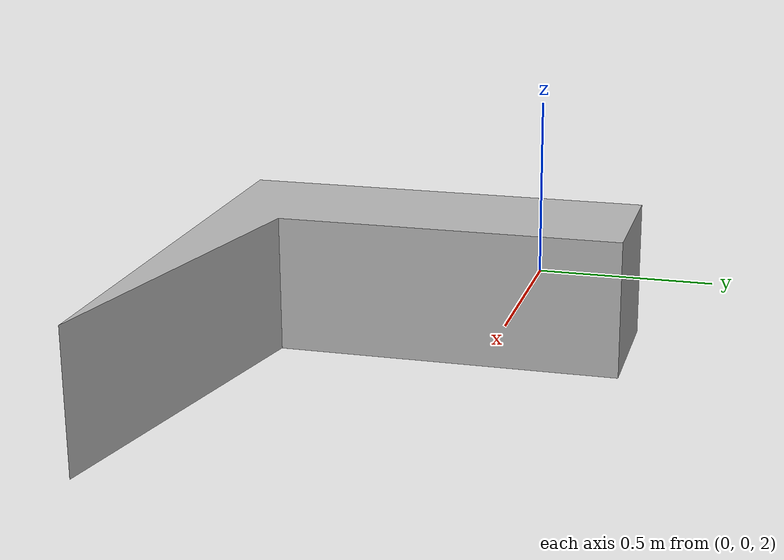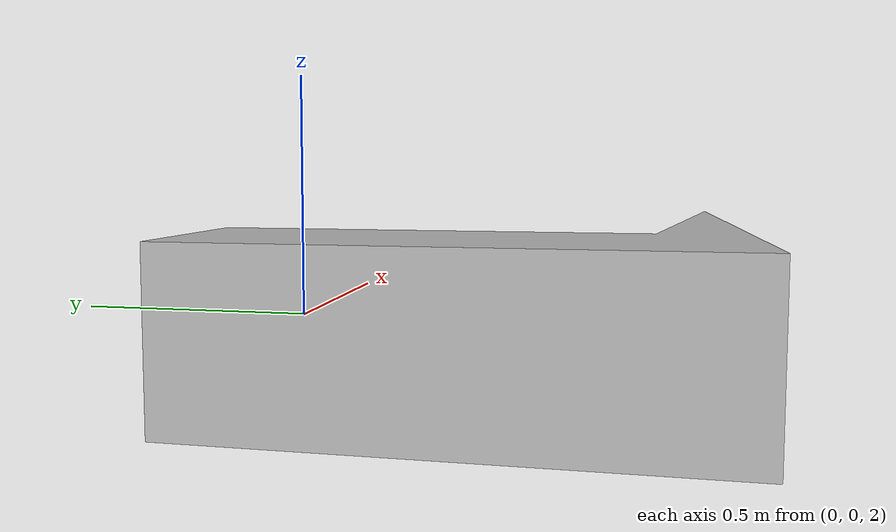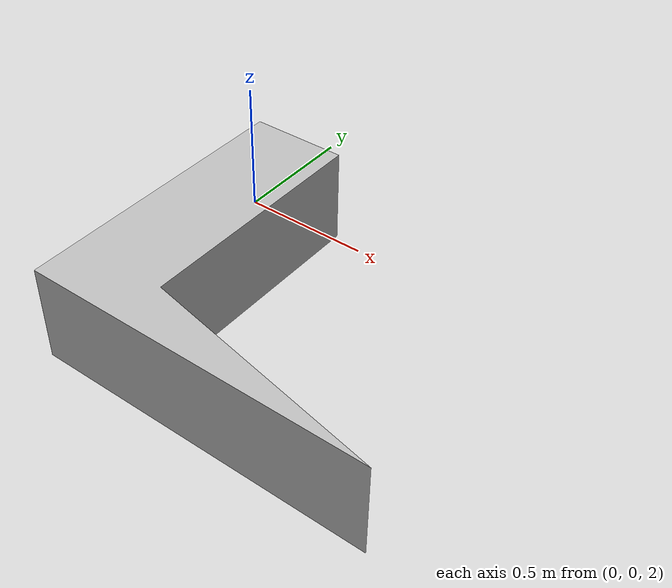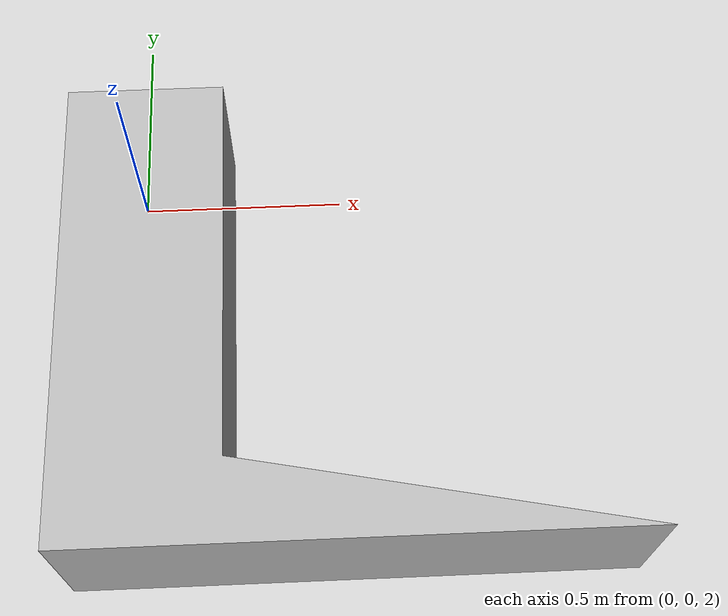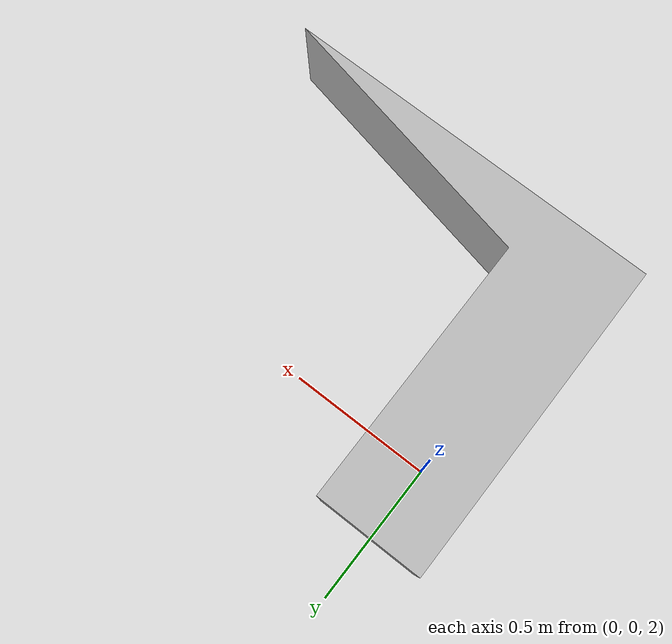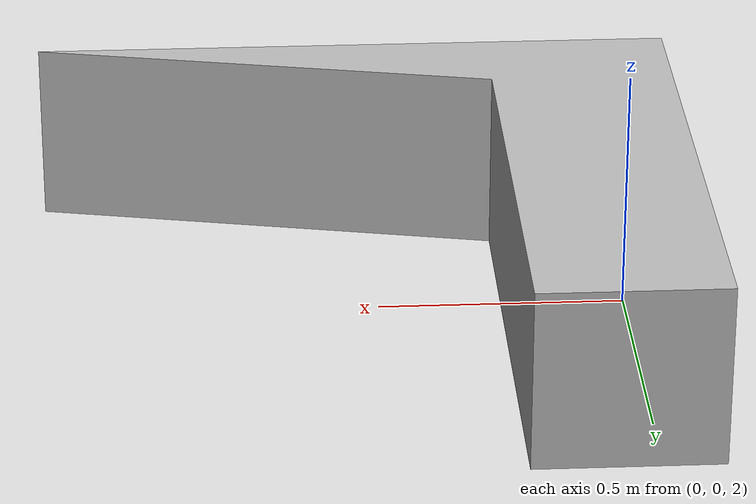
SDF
<?xml version="1.0" ?>
<sdf version="1.5">
  <model name="Obstacle Sucky">
    <pose>0 0 0.75  0 0 0</pose>
    <static>false</static>
    <link name="link">
      <inertial>
        <mass>40.0</mass>
        <inertia>
          <ixx>1</ixx>
          <ixy>0</ixy>
          <ixz>0</ixz>
          <iyy>1</iyy>
          <iyz>0</iyz>
          <izz>1</izz>
        </inertia>
      </inertial>

      <collision name="collision">
        <geometry>
          <box>
              <size>0.40 0.40 1.20</size>
          </box>
        </geometry>
	<surface>
          <contact>
            <ode>
              <max_vel>0.1</max_vel>
              <min_depth>0.001</min_depth>
            </ode>
          </contact>
        </surface>
      </collision>
      <visual name="visual">
        <geometry>
          <mesh>
            <uri>model://obstacle_sucky/meshes/TestMesh772025.stl</uri>
          </mesh>
	</geometry>
      </visual>
    </link>
  </model>
</sdf>
